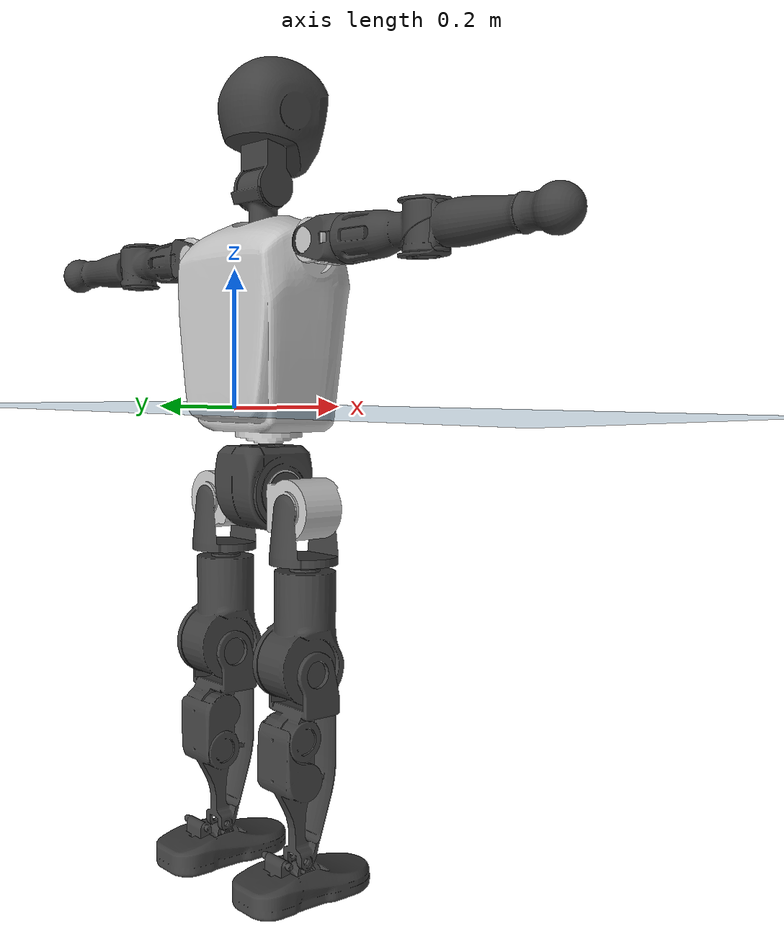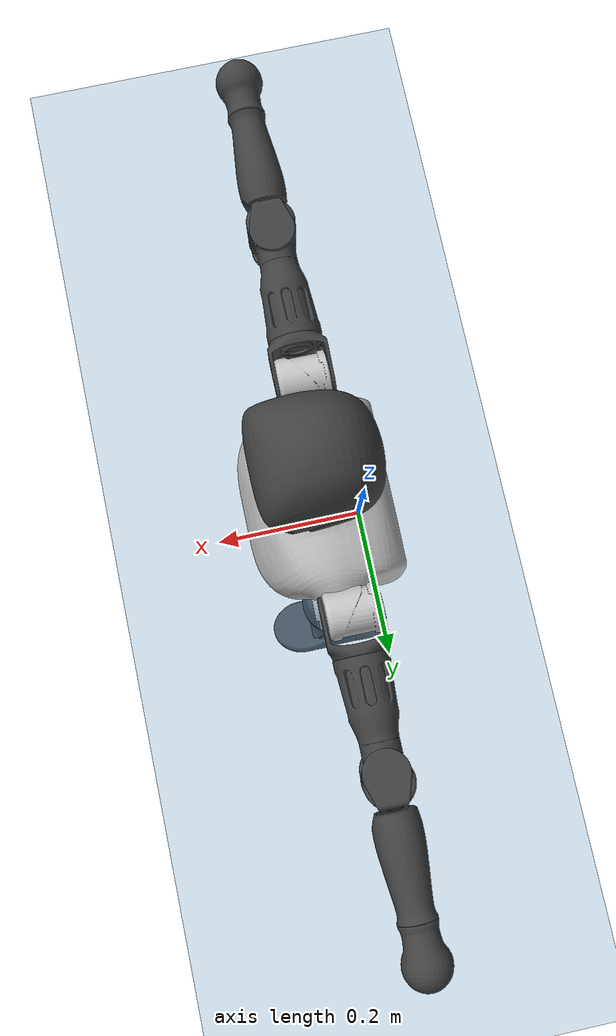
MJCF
<mujoco model="T1">
  <compiler angle="radian" assetdir="assets" balanceinertia="true" inertiafromgeom="false"/>

  <option timestep="0.005" density="1.2" viscosity="2e-05"/>

  <size nkey="1"/>

  <visual>
    <quality shadowsize="8192"/>
    <map shadowclip="0.5"/>
  </visual>

  <default>
    <default class="/">
      <joint armature="0.01" damping="0.01" frictionloss="0.1"/>
      <geom contype="0" conaffinity="0" group="1" solref="-1000 -80"/>
      <site size="0.01 0.005 0.005" group="5"/>
      <general forcelimited="true" biastype="affine" gainprm="25" biasprm="0 -25 -0.6"/>
      <default class="t1">
        <geom rgba="0.25 0.25 0.25 1"/>
        <default class="visual">
          <geom type="mesh" group="2"/>
        </default>
        <default class="collision">
          <geom group="3"/>
        </default>
        <default class="foot">
          <geom size="0.1115 0.05 0.015" type="box" condim="6" group="4" priority="1" solimp="0.015 1 0.015"/>
        </default>
        <default class="reward_collision_sphere">
          <geom group="5" rgba="1 0 0 1"/>
        </default>
      </default>
    </default>
  </default>

  <asset>
    <texture type="skybox" colorspace="auto" name="//unnamed_texture_0" builtin="gradient" rgb1="0.95 0.95 0.95" rgb2="0.95 0.95 0.95" width="100" height="600"/>
    <texture type="2d" colorspace="auto" name="texplane" builtin="checker" rgb1="0.345 0.575 0.748" rgb2="0.345 0.575 0.748" markrgb="1 1 1" width="512" height="512"/>
    <material name="MatPlane" class="/" texture="texplane" texuniform="true" texrepeat="2 2" specular="0.9"/>
    <mesh name="Trunk" class="/" file="Trunk.stl"/>
    <mesh name="H1" class="/" file="H1.stl"/>
    <mesh name="H2" class="/" file="H2.stl"/>
    <mesh name="AL1" class="/" file="AL1.stl"/>
    <mesh name="AL2" class="/" file="AL2.stl"/>
    <mesh name="AL3" class="/" file="AL3.stl"/>
    <mesh name="left_hand_link" class="/" file="left_hand_link.stl"/>
    <mesh name="AR1" class="/" file="AR1.stl"/>
    <mesh name="AR2" class="/" file="AR2.stl"/>
    <mesh name="AR3" class="/" file="AR3.stl"/>
    <mesh name="right_hand_link" class="/" file="right_hand_link.stl"/>
    <mesh name="Waist" class="/" file="Waist.stl"/>
    <mesh name="Hip_Pitch_Left" class="/" file="Hip_Pitch_Left.stl"/>
    <mesh name="Hip_Roll_Left" class="/" file="Hip_Roll_Left.stl"/>
    <mesh name="Hip_Yaw_Left" class="/" file="Hip_Yaw_Left.stl"/>
    <mesh name="Shank_Left" class="/" file="Shank_Left.stl"/>
    <mesh name="Ankle_Cross_Left" class="/" file="Ankle_Cross_Left.stl"/>
    <mesh name="left_foot_link" class="/" file="left_foot_link.stl"/>
    <mesh name="Hip_Pitch_Right" class="/" file="Hip_Pitch_Right.stl"/>
    <mesh name="Hip_Roll_Right" class="/" file="Hip_Roll_Right.stl"/>
    <mesh name="Hip_Yaw_Right" class="/" file="Hip_Yaw_Right.stl"/>
    <mesh name="Shank_Right" class="/" file="Shank_Right.stl"/>
    <mesh name="Ankle_Cross_Right" class="/" file="Ankle_Cross_Right.stl"/>
    <mesh name="right_foot_link" class="/" file="right_foot_link.stl"/>
  </asset>

  <worldbody>
    <geom name="floor" class="/" size="100 100 0.125" type="plane" group="0" material="MatPlane"/>
    <light name="toplight_shadow" class="/" pos="0 0 5" dir="0.0990148 0.0990148 -0.990148" type="directional" ambient="0.04 0.04 0.04" diffuse="0.55 0.55 0.55" specular="0.12 0.12 0.12"/>
    <light name="toplight_fill" class="/" pos="0 0 5" dir="0.0990148 0.0990148 -0.990148" type="directional" castshadow="false" ambient="0.04 0.04 0.04" diffuse="0.3 0.3 0.3" specular="0.08 0.08 0.08"/>
    <body name="trunk" childclass="t1" pos="0.000194565 0.000387165 -0.000778538" quat="1 -8.96525e-05 -6.00304e-05 -6.65296e-05">
      <inertial pos="0.0457699 -4.9767e-06 0.111022" quat="0.999956 -8.49945e-05 -0.00942733 -0.000229336" mass="9.7523" diaginertia="0.0387787 0.0521165 0.0743814"/>
      <joint name="//unnamed_joint_0" type="free" armature="0" damping="0" frictionloss="0"/>
      <geom name="//unnamed_geom_1" class="visual" rgba="0.76 0.76 0.76 1" mesh="Trunk"/>
      <geom name="//unnamed_geom_2" class="collision" size="0.0705541 0.0940721 0.141108" pos="0.0504725 0 0.127027" type="box"/>
      <geom name="//unnamed_geom_3" class="reward_collision_sphere" size="0.108183" pos="0.0504725 0 0.105856"/>
      <geom name="//unnamed_geom_4" class="reward_collision_sphere" size="0.0141108" pos="0.0504725 0.0784034 0"/>
      <geom name="//unnamed_geom_5" class="reward_collision_sphere" size="0.0141108" pos="0.0504725 -0.0784034 0"/>
      <geom name="//unnamed_geom_6" class="reward_collision_sphere" size="0.0141108" pos="0.0504725 0.0986961 0.190541"/>
      <geom name="//unnamed_geom_7" class="reward_collision_sphere" size="0.0141108" pos="0.0504725 -0.0986961 0.190541"/>
      <site name="imu" pos="-0.00389318 -0.00179232 0.00206939" size="0.00940721"/>
      <camera name="track" pos="0 -1.84479 0" quat="0.707107 0.707107 0 0" mode="trackcom"/>
      <camera name="ego_camera" pos="0.102627 0 0.444596" quat="-0.5 -0.5 0.5 0.5"/>
      <body name="H1" pos="0.051608 -0.000616159 0.257879" quat="1 -8.62508e-08 -4.1902e-08 -1.65361e-08">
        <inertial pos="-0.000659868 -0.00177736 0.0600041" quat="0.76585 -0.0136625 0.00301414 0.642867" mass="0.371225" diaginertia="0.000102814 0.000149025 0.000201463"/>
        <joint name="AAHead_yaw" pos="0 0 0" axis="0.00134325 0.00128727 0.999998" range="-1.56347 1.58401" armature="0.00968521" damping="0.00467951" frictionloss="0.0971987"/>
        <geom name="//unnamed_geom_8" class="visual" mesh="H1"/>
        <body name="H2" pos="-0.000299781 -0.000132799 0.0645566" quat="1 -5.48476e-05 1.81895e-05 -3.06383e-06">
          <inertial pos="0.00614467 0.000872706 0.104298" quat="0.988387 0.107444 -0.0738703 -0.0780357" mass="0.529054" diaginertia="0.00086842 0.00128787 0.00230427"/>
          <joint name="Head_pitch" pos="0 0 0" axis="-0.00145931 -0.999999 0.000241875" range="-1.21626 0.346322" armature="0.00934701" damping="0.00646031" frictionloss="0.0921528"/>
          <geom name="//unnamed_geom_9" class="visual" mesh="H2"/>
          <geom name="//unnamed_geom_10" class="collision" size="0.0752577" pos="0.00841208 0 0.116442"/>
          <geom name="//unnamed_geom_11" class="reward_collision_sphere" size="0.0846649" pos="0.0168242 0 0.105856"/>
        </body>
      </body>
      <body name="AL1" pos="0.0496322 0.099183 0.231773" quat="1 5.55104e-05 0.000463965 1.99495e-05">
        <inertial pos="0.000132853 0.0413863 0.000108229" quat="0.506058 0.495565 -0.502902 0.495389" mass="0.438868" diaginertia="0.000577073 0.000856302 0.000386781"/>
        <joint name="Left_Shoulder_Pitch" pos="0 0 0" axis="0.0027969 0.999996 -0.00103082" range="-3.31076 1.2145" armature="0.00938707" damping="0.00763735" frictionloss="0.0926224"/>
        <geom name="//unnamed_geom_12" class="visual" rgba="0.76 0.76 0.76 1" mesh="AL1"/>
        <body name="AL2" pos="0.00124382 0.0438105 0.000570778" quat="1 4.39152e-05 8.39901e-06 -9.1168e-05">
          <inertial pos="0.00275619 0.0357661 -0.000125857" quat="0.487785 0.5112 -0.48883 0.511649" mass="0.132545" diaginertia="0.000168051 0.000231055 0.000233181"/>
          <joint name="Left_Shoulder_Roll" pos="0 0 0" axis="-1 0.000336738 -0.000691044" range="-1.56246 1.72329" armature="0.00938368" damping="0.00403738" frictionloss="0.0943124"/>
          <geom name="//unnamed_geom_13" class="visual" mesh="AL2"/>
          <body name="AL3" pos="0.000240012 0.0561271 -0.000134881" quat="1 -0.000143421 -0.000254834 2.61204e-05">
            <inertial pos="-0.000678449 0.0783891 -0.000258794" quat="0.70575 0.708459 0.00114935 -0.000767999" mass="0.840127" diaginertia="0.00537486 0.0085467 0.000821974"/>
            <joint name="Left_Elbow_Pitch" pos="0 0 0" axis="-0.00160067 -0.999999 0.0005783" range="-2.277 2.27086" armature="0.0097744" damping="0.00950342" frictionloss="0.0921443"/>
            <geom name="//unnamed_geom_14" class="visual" mesh="AL3"/>
            <geom name="//unnamed_geom_15" class="collision" size="0.0282216 0.0705541" pos="0 0.0461197 0" quat="0.707105 0.707108 0 0" type="cylinder"/>
            <geom name="//unnamed_geom_16" class="reward_collision_sphere" size="0.033866"/>
            <body name="left_hand_link" pos="0.00105233 0.135876 0.000328985" quat="1 3.18488e-05 -0.000100925 2.32404e-05">
              <inertial pos="-0.000194376 0.101968 -0.000475068" quat="0.705753 0.708455 -0.00103494 0.00185697" mass="0.271509" diaginertia="0.00341653 0.00545863 0.000287083"/>
              <joint name="Left_Elbow_Yaw" pos="0 0 0" axis="-0.00244742 0.00202861 0.999995" range="-2.45029 0.00516719" armature="0.00944947" damping="0.0101745" frictionloss="0.0932081"/>
              <geom name="//unnamed_geom_17" class="visual" mesh="left_hand_link"/>
              <geom name="//unnamed_geom_18" class="collision" size="0.0282216 0.0823131" pos="0 0.119911 0" quat="0.707105 0.707108 0 0" type="cylinder"/>
              <geom name="//unnamed_geom_19" class="reward_collision_sphere" size="0.0470361"/>
              <geom name="//unnamed_geom_20" class="reward_collision_sphere" size="0.0329252" pos="0 0.101463 0"/>
              <geom name="//unnamed_geom_21" class="reward_collision_sphere" size="0.0329252" pos="0 0.198315 0"/>
            </body>
          </body>
        </body>
      </body>
      <body name="AR1" pos="0.0470907 -0.0973675 0.231793" quat="1 0.000292485 0.000515811 -8.94937e-05">
        <inertial pos="-0.00119206 -0.0413782 0.000208175" quat="0.504001 0.495017 -0.504353 0.496556" mass="0.445518" diaginertia="0.000580809 0.000870504 0.000392564"/>
        <joint name="Right_Shoulder_Pitch" pos="0 0 0" axis="0.00148159 -0.999999 -0.000847951" range="-1.24 3.31621" armature="0.00941336" damping="0.00397314" frictionloss="0.0907864"/>
        <geom name="//unnamed_geom_22" class="visual" rgba="0.76 0.76 0.76 1" mesh="AR1"/>
        <body name="AR2" pos="-0.000690414 -0.0419482 -0.000286135" quat="1 -0.000319853 0.000315491 -0.000285632">
          <inertial pos="0.00402405 -0.034795 0.00119275" quat="0.509628 0.487622 -0.511586 0.490696" mass="0.135121" diaginertia="0.000170363 0.000233337 0.000234828"/>
          <joint name="Right_Shoulder_Roll" pos="0 0 0" axis="-0.999994 -0.00251316 -0.00244541" stiffness="0.00254502" range="-1.73489 1.57469" armature="0.00944101" damping="0.00630392" frictionloss="0.0932936"/>
          <geom name="//unnamed_geom_23" class="visual" mesh="AR2"/>
          <body name="AR3" pos="-0.000175066 -0.0555966 -0.000411661" quat="1 -0.000118996 -0.000267367 -0.000120134">
            <inertial pos="0.000145587 -0.0791032 -0.000195022" quat="0.707876 0.706337 -3.00348e-05 0.000101423" mass="0.857672" diaginertia="0.00547473 0.00862872 0.000834795"/>
            <joint name="Right_Elbow_Pitch" pos="0 0 0" axis="0.00042872 1 -0.000445118" stiffness="0.001251" range="-2.28094 2.26381" armature="0.00938249" damping="0.00883722" frictionloss="0.0971934"/>
            <geom name="//unnamed_geom_24" class="visual" mesh="AR3"/>
            <geom name="//unnamed_geom_25" class="collision" size="0.0282216 0.0705541" pos="0 -0.0461197 0" quat="0.707105 0.707108 0 0" type="cylinder"/>
            <geom name="//unnamed_geom_26" class="reward_collision_sphere" size="0.033866"/>
            <body name="right_hand_link" pos="0.000421499 -0.135091 0.000411632" quat="1 -0.000109116 3.24046e-05 -0.000131196">
              <inertial pos="-0.000345657 -0.100759 0.000572092" quat="0.706609 0.707604 0.00017802 0.000339125" mass="0.275656" diaginertia="0.00345151 0.00544438 0.000288489"/>
              <joint name="Right_Elbow_Yaw" pos="0 0 0" axis="0.000498589 0.000144226 1" range="-0.00666673 2.43755" armature="0.009589" damping="0.00523847" frictionloss="0.0903715"/>
              <geom name="//unnamed_geom_27" class="visual" mesh="right_hand_link"/>
              <geom name="//unnamed_geom_28" class="collision" size="0.0282216 0.0823131" pos="0 -0.119911 0" quat="0.707105 0.707108 0 0" type="cylinder"/>
              <geom name="//unnamed_geom_29" class="reward_collision_sphere" size="0.0470361"/>
              <geom name="//unnamed_geom_30" class="reward_collision_sphere" size="0.0329252" pos="0 -0.101463 0"/>
              <geom name="//unnamed_geom_31" class="reward_collision_sphere" size="0.0329252" pos="0 -0.198315 0"/>
            </body>
          </body>
        </body>
      </body>
      <body name="Waist" pos="0.0527555 -8.99817e-05 -0.121509" quat="1 1.07653e-05 1.15177e-05 5.98803e-07">
        <inertial pos="0.00182648 -0.00136338 0.0086867" quat="0.98384 0.000725842 -0.179031 0.00234956" mass="2.14438" diaginertia="0.00225666 0.00351252 0.0062423"/>
        <joint name="Waist" pos="0 0 0" axis="-0.0044611 -0.00162004 0.999989" range="-1.57107 1.58145" armature="0.00943777" damping="0.0110176" frictionloss="0.0943752"/>
        <geom name="//unnamed_geom_32" class="visual" mesh="Waist"/>
        <body name="Hip_Pitch_Left" pos="1.1882e-05 0.0981607 0.000610061" quat="1 0.000212952 -0.000116245 -0.000319804">
          <inertial pos="0.00080323 -0.0072401 -0.0193998" quat="0.975069 0.221459 0.0137559 0.00249113" mass="0.838605" diaginertia="0.000754364 0.000955976 0.00164188"/>
          <joint name="Left_Hip_Pitch" pos="0 0 0" axis="-0.00617249 0.999981 0.000564284" range="-1.80505 1.56155" armature="0.00904322" damping="0.00827862" frictionloss="0.0929735"/>
          <geom name="//unnamed_geom_33" class="visual" rgba="0.76 0.76 0.76 1" mesh="Hip_Pitch_Left"/>
          <body name="Hip_Roll_Left" pos="0.00107786 0.000613853 -0.022619" quat="1 8.45863e-06 -2.71122e-06 -7.07582e-06">
            <inertial pos="0.00135663 -0.000450126 -0.056297" quat="0.706992 -0.0057762 -0.00610771 0.707172" mass="0.324208" diaginertia="0.000743994 0.00101955 0.000696012"/>
            <joint name="Left_Hip_Roll" pos="0 0 0" axis="-0.999988 -0.00460578 -0.00154045" range="-1.57814 0.188162" armature="0.00962208" damping="0.00418477" frictionloss="0.0906758"/>
            <geom name="//unnamed_geom_34" class="visual" mesh="Hip_Roll_Left"/>
            <geom name="//unnamed_geom_35" class="reward_collision_sphere" size="0.0517397"/>
            <body name="Hip_Yaw_Left" pos="-0.000229111 0.000544114 -0.0879258" quat="1 0.00035041 -0.000149236 -0.000228342">
              <inertial pos="-0.00539784 -5.12241e-05 -0.0937761" quat="0.697049 -0.0334088 -0.031777 0.71554" mass="1.81109" diaginertia="0.0109563 0.0167964 0.00343999"/>
              <joint name="Left_Hip_Yaw" pos="0 0 0" axis="0.00266648 0.00126824 -0.999996" range="-1.01556 1.00365" armature="0.00940695" damping="0.00721462" frictionloss="0.0937018"/>
              <geom name="//unnamed_geom_36" class="visual" mesh="Hip_Yaw_Left"/>
              <geom name="//unnamed_geom_37" class="collision" size="0.0470361 0.0752577" type="cylinder"/>
              <body name="Shank_Left" pos="-0.0118529 9.27852e-05 -0.144186" quat="1 2.42539e-05 3.93669e-05 1.25189e-05">
                <inertial pos="-0.0043223 0.000884584 -0.131919" quat="0.997717 -0.00107353 -0.0254585 0.0625433" mass="1.44521" diaginertia="0.0145431 0.0230873 0.00250506"/>
                <joint name="Left_Knee_Pitch" pos="0 0 0" axis="-0.00296918 0.999994 -0.00151724" range="-0.00206681 2.35747" armature="0.00897888" damping="0.01276" frictionloss="0.0953761"/>
                <geom name="//unnamed_geom_38" class="visual" mesh="Shank_Left"/>
                <geom name="//unnamed_geom_39" class="collision" size="0.0470361 0.0705541" pos="0 0 -0.127027" type="cylinder"/>
                <geom name="//unnamed_geom_40" class="reward_collision_sphere" size="0.0611469"/>
                <body name="Ankle_Cross_Left" pos="-0.00088981 -4.54769e-05 -0.295635" quat="1 -6.58129e-05 -0.000194387 -0.000385764">
                  <inertial pos="-0.0035592 0.000711534 -0.00921747" quat="0.443128 0.55137 0.550852 0.442935" mass="0.0608269" diaginertia="1.23432e-05 1.71387e-05 1.50369e-05"/>
                  <joint name="Left_Ankle_Pitch" pos="0 0 0" axis="-0.000858703 1 -0.000163424" range="-0.872298 0.349791" armature="0.0097029" damping="0.00610169" frictionloss="0.0929305"/>
                  <geom name="//unnamed_geom_41" class="visual" mesh="Ankle_Cross_Left"/>
                  <body name="left_foot_link" pos="-4.79534e-06 0.000729176 -0.0127926" quat="1 0.0001212 0.000191122 0.000174143">
                    <inertial pos="0.000608641 0.000883851 -0.00989164" quat="0.000291624 0.620444 0.000272776 0.784251" mass="0.572756" diaginertia="0.00115106 0.00160553 0.00293036"/>
                    <joint name="Left_Ankle_Roll" pos="0 0 0" axis="-0.999981 0.00334491 0.00521923" range="-0.43629 0.422705" armature="0.00932455" damping="0.0110101" frictionloss="0.091831"/>
                    <geom name="//unnamed_geom_42" class="visual" mesh="left_foot_link"/>
                    <geom name="left_foot" class="foot" size="0.100852 0.0487143 0.013904" pos="0.00841208 0 -0.0158784"/>
                    <geom name="//unnamed_geom_44" class="reward_collision_sphere" size="0.0489175" pos="0.00841208 0 -0.0158784"/>
                    <geom name="//unnamed_geom_45" class="reward_collision_sphere" size="0.0282216" pos="0.0799148 -0.021215 -0.0158784"/>
                    <geom name="//unnamed_geom_46" class="reward_collision_sphere" size="0.0282216" pos="-0.0588846 -0.021215 -0.0158784"/>
                    <site name="left_foot" class="foot" pos="0.00841208 0 -0.0158784" size="0.00940721"/>
                  </body>
                </body>
              </body>
            </body>
          </body>
        </body>
        <body name="Hip_Pitch_Right" pos="0.000312419 -0.0970239 -0.000889052" quat="1 -2.11333e-05 -0.000135317 -0.000266182">
          <inertial pos="0.000341525 0.00724949 -0.0190466" quat="0.97327 -0.229252 0.0132169 -0.00367634" mass="0.848722" diaginertia="0.000754057 0.000967403 0.0016487"/>
          <joint name="Right_Hip_Pitch" pos="0 0 0" axis="0.00021877 -1 0.000592935" stiffness="0.00117241" range="-1.58137 1.81723" armature="0.00948474" damping="0.00565734" frictionloss="0.0929328"/>
          <geom name="//unnamed_geom_47" class="visual" rgba="0.76 0.76 0.76 1" mesh="Hip_Pitch_Right"/>
          <body name="Hip_Roll_Right" pos="0.000257915 6.21965e-05 -0.022137" quat="1 4.73697e-05 9.29595e-05 0.000217842">
            <inertial pos="0.00200651 0.000109206 -0.0576386" quat="0.705782 -0.00554248 -0.00694952 0.708374" mass="0.31854" diaginertia="0.000734191 0.00100691 0.000683599"/>
            <joint name="Right_Hip_Roll" pos="0 0 0" axis="-0.999997 -0.00236183 0.000760918" stiffness="0.000151688" range="-0.207642 1.56672" armature="0.00950631" damping="0.00661566" frictionloss="0.0900513"/>
            <geom name="//unnamed_geom_48" class="visual" mesh="Hip_Roll_Right"/>
            <geom name="//unnamed_geom_49" class="reward_collision_sphere" size="0.0517397"/>
            <body name="Hip_Yaw_Right" pos="-0.000415534 -0.000212114 -0.0867423" quat="1 -5.32992e-05 -3.68804e-05 8.69648e-06">
              <inertial pos="-0.00561817 -0.000602023 -0.0954069" quat="0.714425 -0.0315956 -0.0334283 0.698199" mass="1.81684" diaginertia="0.0109276 0.0168646 0.00347934"/>
              <joint name="Right_Hip_Yaw" pos="0 0 0" axis="-0.00227712 0.00372237 -0.99999" stiffness="0.000330515" range="-1.00828 0.998161" armature="0.00953146" damping="0.0100843" frictionloss="0.0937654"/>
              <geom name="//unnamed_geom_50" class="visual" mesh="Hip_Yaw_Right"/>
              <geom name="//unnamed_geom_51" class="collision" size="0.0470361 0.0752577" type="cylinder"/>
              <body name="Shank_Right" pos="-0.0114686 -0.000698392 -0.142728" quat="1 -2.24142e-05 -6.5076e-06 -6.56181e-05">
                <inertial pos="-0.00512787 0.000456555 -0.129641" quat="0.999262 0.00213586 -0.0211561 -0.0319798" mass="1.48577" diaginertia="0.0148556 0.0233881 0.00262492"/>
                <joint name="Right_Knee_Pitch" pos="0 0 0" axis="-0.00174592 -0.999992 0.00356104" range="-2.33802 -0.00233708" armature="0.00922486" damping="0.00698075" frictionloss="0.0933161"/>
                <geom name="//unnamed_geom_52" class="visual" mesh="Shank_Right"/>
                <geom name="//unnamed_geom_53" class="collision" size="0.0470361 0.0705541" pos="0 0 -0.127027" type="cylinder"/>
                <geom name="//unnamed_geom_54" class="reward_collision_sphere" size="0.0611469"/>
                <body name="Ankle_Cross_Right" pos="0.000870242 -6.03709e-05 -0.295967" quat="1 7.02073e-05 8.17627e-05 1.99469e-05">
                  <inertial pos="-0.00270317 -0.000541151 -0.00848223" quat="0.443127 0.551239 0.550969 0.442954" mass="0.0612934" diaginertia="1.21668e-05 1.72823e-05 1.50126e-05"/>
                  <joint name="Right_Ankle_Pitch" pos="0 0 0" axis="0.00145182 -0.999998 0.00166973" range="-0.367572 0.883272" armature="0.00942501" damping="0.00200539" frictionloss="0.0935515"/>
                  <geom name="//unnamed_geom_55" class="visual" mesh="Ankle_Cross_Right"/>
                  <body name="right_foot_link" pos="-8.39721e-05 -0.00140431 -0.0106672" quat="1 -2.31971e-05 -4.4591e-06 3.0107e-08">
                    <inertial pos="-1.21603e-05 -0.000493843 -0.0101477" quat="-0.000173577 0.621996 0.00135514 0.783019" mass="0.568631" diaginertia="0.00112536 0.00157572 0.00287063"/>
                    <joint name="Right_Ankle_Roll" pos="0 0 0" axis="-1 -1.38428e-05 -0.000479222" range="-0.427186 0.44058" armature="0.00904318" damping="0.00203388" frictionloss="0.090177"/>
                    <geom name="//unnamed_geom_56" class="visual" mesh="right_foot_link"/>
                    <geom name="right_foot" class="foot" size="0.100927 0.0479649 0.0140779" pos="0.00841208 0 -0.0158784"/>
                    <geom name="//unnamed_geom_58" class="reward_collision_sphere" size="0.0376288"/>
                    <geom name="//unnamed_geom_59" class="reward_collision_sphere" size="0.0282216" pos="0.00841208 0 -0.0158784"/>
                    <geom name="//unnamed_geom_60" class="reward_collision_sphere" size="0.0282216" pos="0.0799148 0.021215 -0.0158784"/>
                    <geom name="//unnamed_geom_61" class="reward_collision_sphere" size="0.0282216" pos="-0.0588846 0.021215 -0.0158784"/>
                    <site name="right_foot" class="foot" pos="0.00841208 0 -0.0158784" size="0.00940721"/>
                  </body>
                </body>
              </body>
            </body>
          </body>
        </body>
      </body>
    </body>
  </worldbody>

  <contact>
    <pair class="/" geom1="floor" geom2="left_foot" name="//unnamed_contact_0"/>
    <pair class="/" geom1="floor" geom2="right_foot" name="//unnamed_contact_1"/>
  </contact>

  <actuator>
    <general name="AAHead_yaw" class="/" joint="AAHead_yaw" forcerange="-6.60743 6.60743" gainprm="23.7038" biasprm="0 -23.7038 -0.542753"/>
    <general name="Head_pitch" class="/" joint="Head_pitch" forcerange="-6.59438 6.59438" gainprm="23.7038" biasprm="0 -23.7038 -0.542753"/>
    <general name="Left_Shoulder_Pitch" class="/" joint="Left_Shoulder_Pitch" forcerange="-16.4316 16.4316" gainprm="23.7038" biasprm="0 -23.7038 -0.542753"/>
    <general name="Left_Shoulder_Roll" class="/" joint="Left_Shoulder_Roll" forcerange="-17.0098 17.0098" gainprm="23.7038" biasprm="0 -23.7038 -0.542753"/>
    <general name="Left_Elbow_Pitch" class="/" joint="Left_Elbow_Pitch" forcerange="-16.4442 16.4442" gainprm="23.7038" biasprm="0 -23.7038 -0.542753"/>
    <general name="Left_Elbow_Yaw" class="/" joint="Left_Elbow_Yaw" forcerange="-16.958 16.958" gainprm="23.7038" biasprm="0 -23.7038 -0.542753"/>
    <general name="Right_Shoulder_Pitch" class="/" joint="Right_Shoulder_Pitch" forcerange="-16.8128 16.8128" gainprm="23.7038" biasprm="0 -23.7038 -0.542753"/>
    <general name="Right_Shoulder_Roll" class="/" joint="Right_Shoulder_Roll" forcerange="-16.418 16.418" gainprm="23.7038" biasprm="0 -23.7038 -0.542753"/>
    <general name="Right_Elbow_Pitch" class="/" joint="Right_Elbow_Pitch" forcerange="-17.265 17.265" gainprm="23.7038" biasprm="0 -23.7038 -0.542753"/>
    <general name="Right_Elbow_Yaw" class="/" joint="Right_Elbow_Yaw" forcerange="-16.6428 16.6428" gainprm="23.7038" biasprm="0 -23.7038 -0.542753"/>
    <general name="Waist" class="/" joint="Waist" forcerange="-28.9885 28.9885" gainprm="23.7038" biasprm="0 -23.7038 -0.542753"/>
    <general name="Left_Hip_Pitch" class="/" joint="Left_Hip_Pitch" forcerange="-42.3269 42.3269" gainprm="23.7038" biasprm="0 -23.7038 -0.542753"/>
    <general name="Left_Hip_Roll" class="/" joint="Left_Hip_Roll" forcerange="-28.0882 28.0882" gainprm="23.7038" biasprm="0 -23.7038 -0.542753"/>
    <general name="Left_Hip_Yaw" class="/" joint="Left_Hip_Yaw" forcerange="-29.1143 29.1143" gainprm="23.7038" biasprm="0 -23.7038 -0.542753"/>
    <general name="Left_Knee_Pitch" class="/" joint="Left_Knee_Pitch" forcerange="-55.6679 55.6679" gainprm="23.7038" biasprm="0 -23.7038 -0.542753"/>
    <general name="Left_Ankle_Pitch" class="/" joint="Left_Ankle_Pitch" forcerange="-18.7737 18.7737" gainprm="23.7038" biasprm="0 -23.7038 -0.542753"/>
    <general name="Left_Ankle_Roll" class="/" joint="Left_Ankle_Roll" forcerange="-14.196 14.196" gainprm="23.7038" biasprm="0 -23.7038 -0.542753"/>
    <general name="Right_Hip_Pitch" class="/" joint="Right_Hip_Pitch" forcerange="-41.9857 41.9857" gainprm="23.7038" biasprm="0 -23.7038 -0.542753"/>
    <general name="Right_Hip_Roll" class="/" joint="Right_Hip_Roll" forcerange="-28.7378 28.7378" gainprm="23.7038" biasprm="0 -23.7038 -0.542753"/>
    <general name="Right_Hip_Yaw" class="/" joint="Right_Hip_Yaw" forcerange="-28.2315 28.2315" gainprm="23.7038" biasprm="0 -23.7038 -0.542753"/>
    <general name="Right_Knee_Pitch" class="/" joint="Right_Knee_Pitch" forcerange="-54.8726 54.8726" gainprm="23.7038" biasprm="0 -23.7038 -0.542753"/>
    <general name="Right_Ankle_Pitch" class="/" joint="Right_Ankle_Pitch" forcerange="-18.5416 18.5416" gainprm="23.7038" biasprm="0 -23.7038 -0.542753"/>
    <general name="Right_Ankle_Roll" class="/" joint="Right_Ankle_Roll" forcerange="-13.784 13.784" gainprm="23.7038" biasprm="0 -23.7038 -0.542753"/>
  </actuator>

  <sensor>
    <gyro site="imu" name="imu_angular_velocity"/>
    <velocimeter site="imu" name="imu_linear_velocity"/>
    <framelinvel objtype="site" objname="left_foot" name="left_foot_global_linear_velocity"/>
    <framelinvel objtype="site" objname="right_foot" name="right_foot_global_linear_velocity"/>
  </sensor>

  <keyframe>
    <key name="home" qpos="0 0 0.6385 1 0 0 0 0 0 0 1.4 0 -0.4 0 -1.4 0 0.4 0 -0.4 0 0 0.8 -0.4 0 0.4 0 0 -0.8 0.4 0"/>
  </keyframe>
</mujoco>
